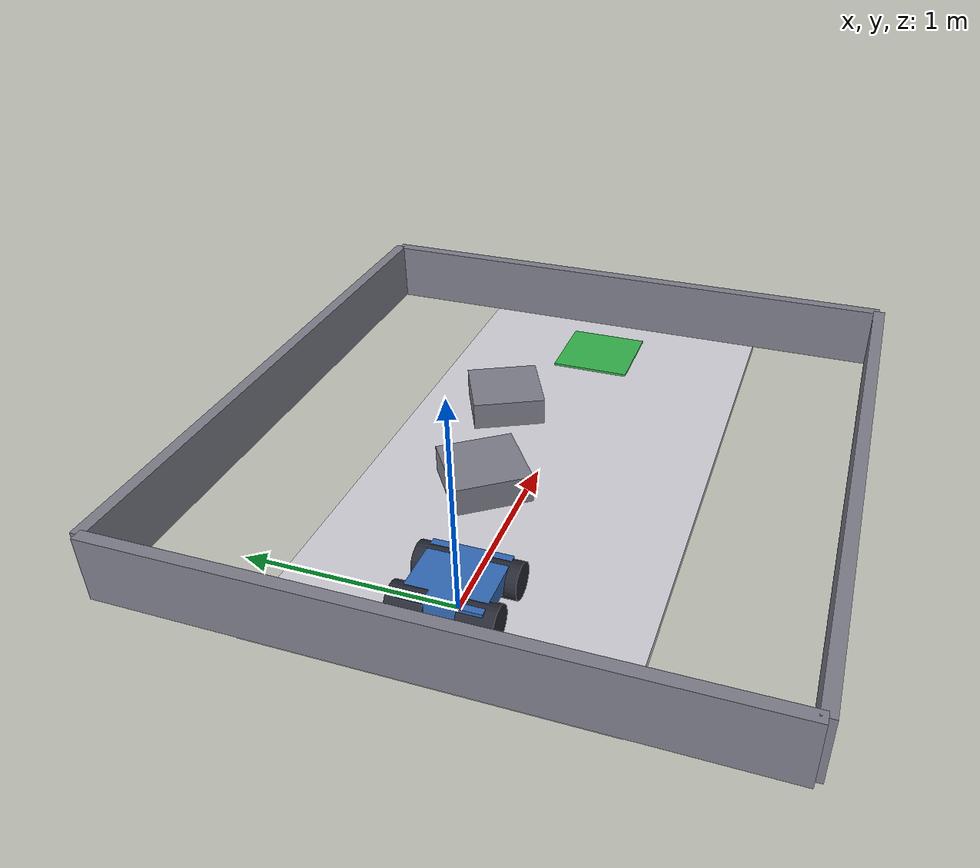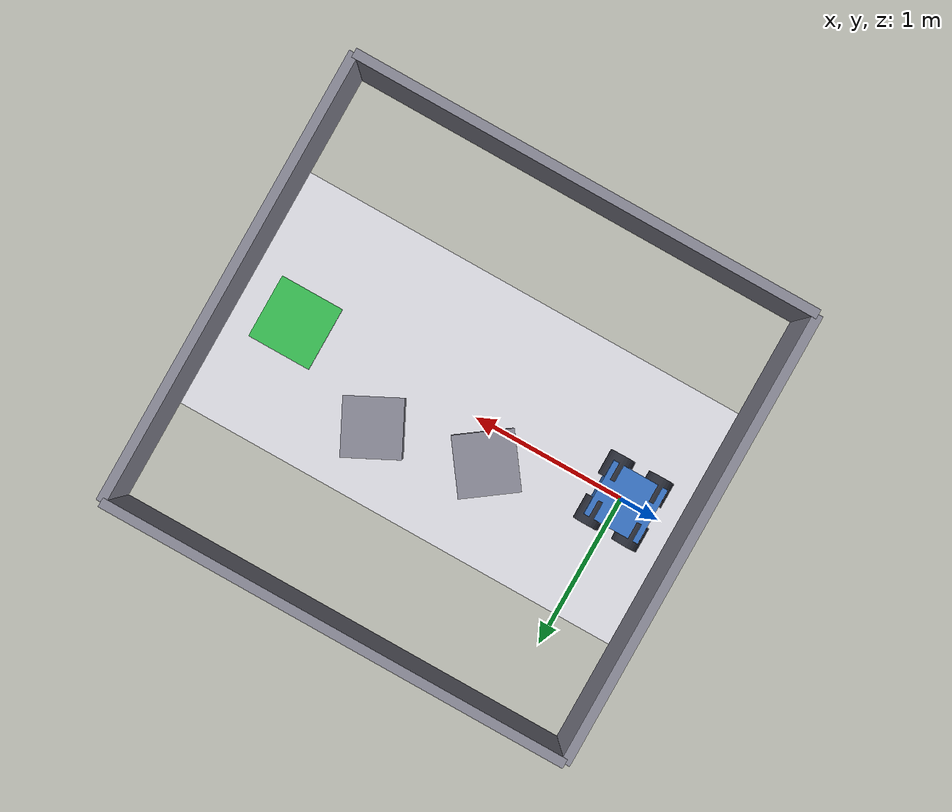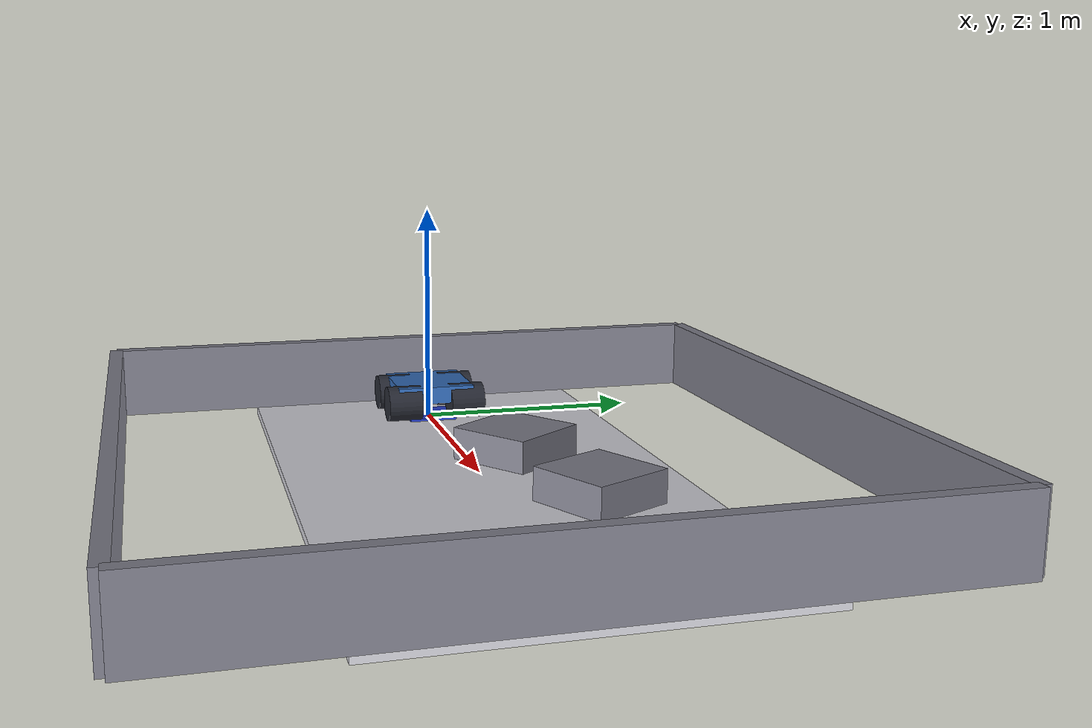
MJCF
<mujoco model="built_mobile_base_5seg">
  <compiler angle="radian" autolimits="true"/>
  <option timestep="0.002" gravity="0 0 -9.81"/>
  <visual>
    <headlight ambient="0.45 0.45 0.48" diffuse="0.65 0.65 0.68" specular="0.22 0.22 0.22"/>
    <quality shadowsize="4096"/>
    <map znear="0.01" zfar="60"/>
  </visual>
  <default>
    <joint damping="0.8" armature="0.01"/>
    <geom friction="1 0.1 0.01"/>
  </default>
  <asset>
    <material name="mat_red" rgba="0.8 0.1 0.1 1"/>
    <material name="mat_blue" rgba="0.1 0.2 0.8 1"/>
    <material name="mat_gray" rgba="0.5 0.5 0.5 1"/>
    <material name="mat_link" rgba="0.35 0.35 0.38 1"/>
    <material name="mat_body" rgba="0.84 0.86 0.89 1" specular="0.35" shininess="0.45" reflectance="0.05"/>
    <material name="mat_joint" rgba="0.15 0.16 0.20 1" specular="0.6" shininess="0.7" reflectance="0.1"/>
    <material name="mat_accent" rgba="0.92 0.47 0.13 1" specular="0.45" shininess="0.55"/>
    <material name="mat_ee" rgba="0.22 0.24 0.29 1" specular="0.5" shininess="0.6"/>
    <material name="mat_alu" rgba="0.78 0.80 0.84 1" specular="0.55" shininess="0.5" reflectance="0.12"/>
    <material name="mat_steel" rgba="0.34 0.36 0.40 1" specular="0.7" shininess="0.7" reflectance="0.18"/>
    <material name="mat_cf" rgba="0.11 0.12 0.14 1" specular="0.45" shininess="0.4" reflectance="0.06"/>
    <material name="mat_ti" rgba="0.60 0.60 0.65 1" specular="0.5" shininess="0.55" reflectance="0.1"/>
    <material name="mat_shell" rgba="0.20 0.42 0.72 1" specular="0.4" shininess="0.5" reflectance="0.05"/>
    <material name="mat_metal" rgba="0.47 0.49 0.53 1" specular="0.78" shininess="0.78" reflectance="0.22"/>
    <material name="mat_rubber" rgba="0.13 0.13 0.15 1" specular="0.15" shininess="0.15"/>
  </asset>
  <worldbody>
    <light name="key" pos="1.6 -1.1 3.0" dir="-0.45 0.32 -1" diffuse="0.55 0.55 0.58" specular="0.25 0.25 0.25"/>
    <light name="fill" pos="-2.0 1.6 2.2" dir="0.5 -0.42 -1" diffuse="0.22 0.22 0.26"/>
    <body name="chassis" pos="0.00000 0.00000 0.10000">
      <freejoint name="chassis_free"/>
      <geom name="chassis_geom" type="box" pos="0 0 0.04000" size="0.18000 0.18000 0.04000" mass="3.00000" material="mat_shell"/>
      <body name="wheel_0" pos="0.13000 0.15000 0.00000" euler="1.57080 0.00000 0.00000">
        <joint name="wheel_0_joint" type="hinge" axis="0.0000 0.0000 1.0000"/>
        <geom name="wheel_0_geom" type="cylinder" fromto="0 0 0 0 0 0.04000" size="0.06000" mass="0.30000" material="mat_metal"/>
        <geom name="wheel_0_motor" type="cylinder" fromto="-0.00000 -0.00000 -0.08000 0.00000 0.00000 0.08000" size="0.08200" material="mat_joint" mass="0" contype="0" conaffinity="0"/>
      </body>

      <body name="wheel_1" pos="0.13000 -0.15000 0.00000" euler="1.57080 0.00000 0.00000">
        <joint name="wheel_1_joint" type="hinge" axis="0.0000 0.0000 1.0000"/>
        <geom name="wheel_1_geom" type="cylinder" fromto="0 0 0 0 0 0.04000" size="0.06000" mass="0.30000" material="mat_metal"/>
        <geom name="wheel_1_motor" type="cylinder" fromto="-0.00000 -0.00000 -0.08000 0.00000 0.00000 0.08000" size="0.08200" material="mat_joint" mass="0" contype="0" conaffinity="0"/>
      </body>

      <body name="wheel_2" pos="-0.13000 0.15000 0.00000" euler="1.57080 0.00000 0.00000">
        <joint name="wheel_2_joint" type="hinge" axis="0.0000 0.0000 1.0000"/>
        <geom name="wheel_2_geom" type="cylinder" fromto="0 0 0 0 0 0.04000" size="0.06000" mass="0.30000" material="mat_metal"/>
        <geom name="wheel_2_motor" type="cylinder" fromto="-0.00000 -0.00000 -0.08000 0.00000 0.00000 0.08000" size="0.08200" material="mat_joint" mass="0" contype="0" conaffinity="0"/>
      </body>

      <body name="wheel_3" pos="-0.13000 -0.15000 0.00000" euler="1.57080 0.00000 0.00000">
        <joint name="wheel_3_joint" type="hinge" axis="0.0000 0.0000 1.0000"/>
        <geom name="wheel_3_geom" type="cylinder" fromto="0 0 0 0 0 0.04000" size="0.06000" mass="0.30000" material="mat_metal"/>
        <geom name="wheel_3_motor" type="cylinder" fromto="-0.00000 -0.00000 -0.08000 0.00000 0.00000 0.08000" size="0.08200" material="mat_joint" mass="0" contype="0" conaffinity="0"/>
        <site name="ee_site" pos="0 0 0.04000" size="0.01"/>
      </body>

    </body>
    <geom name="arena_floor" type="box" size="1.514 0.799 0.02" pos="1.1145 0.0 -0.02" rgba="0.82 0.82 0.85 1"/>
    <geom name="start_zone" type="box" size="0.112 0.112 0.006" pos="0.0 0.0 0.006" rgba="0.15 0.25 0.8 1"/>
    <geom name="goal_zone" type="box" size="0.208 0.208 0.006" pos="2.229 0.036 0.006" rgba="0.2 0.7 0.3 1"/>
    <geom name="wall_bottom" type="box" size="1.514 0.03 0.16" pos="1.1145 -1.465 0.16" euler="0 0 0.0" rgba="0.5 0.5 0.55 1"/>
    <geom name="wall_top" type="box" size="1.514 0.03 0.16" pos="1.1145 1.465 0.16" euler="0 0 0.0" rgba="0.5 0.5 0.55 1"/>
    <geom name="wall_left" type="box" size="1.465 0.03 0.16" pos="-0.39949999999999997 0.0 0.16" euler="0 0 1.5708" rgba="0.5 0.5 0.55 1"/>
    <geom name="wall_right" type="box" size="1.465 0.03 0.16" pos="2.6285 0.0 0.16" euler="0 0 1.5708" rgba="0.5 0.5 0.55 1"/>
    <geom name="obstacle_1_0" type="box" size="0.1888 0.1888 0.07" pos="0.8177 0.2072 0.07" euler="0 0 0.6265" rgba="0.5 0.5 0.55 1"/>
    <geom name="obstacle_1_1" type="box" size="0.1834 0.1834 0.07" pos="1.506 0.3516 0.07" euler="0 0 0.4651" rgba="0.5 0.5 0.55 1"/>
  </worldbody>
  <actuator>
    <motor name="wheel_0_motor" joint="wheel_0_joint" gear="1" forcerange="-8.00 8.00"/>
    <motor name="wheel_1_motor" joint="wheel_1_joint" gear="1" forcerange="-8.00 8.00"/>
    <motor name="wheel_2_motor" joint="wheel_2_joint" gear="1" forcerange="-8.00 8.00"/>
    <motor name="wheel_3_motor" joint="wheel_3_joint" gear="1" forcerange="-8.00 8.00"/>
  </actuator>
</mujoco>
